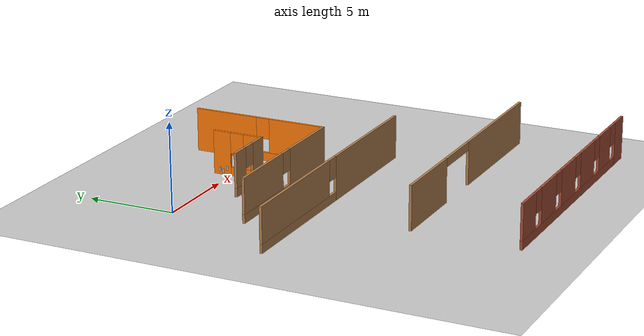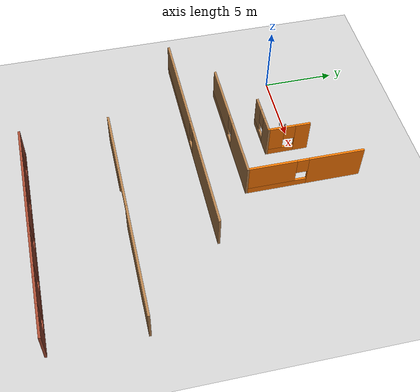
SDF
<sdf version="1.6">
 <world name="default">
  <model name="ground_plane">
   <static>1</static>
   <link name="link">
    <collision name="collision">
     <geometry><plane><normal>0 0 1</normal><size>100 100</size></plane></geometry>
     <surface><friction><ode><mu>100</mu><mu2>50</mu2></ode></friction></surface>
    </collision>
    <visual name="visual">
     <cast_shadows>0</cast_shadows>
     <geometry><plane><normal>0 0 1</normal><size>100 100</size></plane></geometry>
     <material>
      <script><uri>file://media/materials/scripts/gazebo.material</uri><name>Gazebo/Grey</name></script>
     </material>
    </visual>
   </link>
  </model>
  <model name="spiral_office">
   <link name="Wall_102">
    <pose>10.7001 -12.2894 0 0 -0 3.14159</pose>
    <visual name="Wall_102_Visual_0">
     <pose>-3.79286 0 1.25 0 -0 0</pose>
     <geometry><box><size>7.82905 0.15 2.5</size></box></geometry>
     <material>
      <script><uri>file://media/materials/scripts/gazebo.material</uri><name>Gazebo/Wood</name></script>
      <ambient>1 1 1 1</ambient>
     </material>
     <meta><layer>0</layer></meta>
    </visual>
    <collision name="Wall_102_Collision_0">
     <geometry><box><size>7.82905 0.15 2.5</size></box></geometry>
     <pose>-3.79286 0 1.25 0 -0 0</pose>
    </collision>
    <visual name="Wall_102_Visual_1">
     <pose>5.41453 0 1.25 0 -0 0</pose>
     <geometry><box><size>4.58572 0.15 2.5</size></box></geometry>
     <material>
      <script><uri>file://media/materials/scripts/gazebo.material</uri><name>Gazebo/Wood</name></script>
      <ambient>1 1 1 1</ambient>
     </material>
     <meta><layer>0</layer></meta>
    </visual>
    <collision name="Wall_102_Collision_1">
     <geometry><box><size>4.58572 0.15 2.5</size></box></geometry>
     <pose>5.41453 0 1.25 0 -0 0</pose>
    </collision>
    <visual name="Wall_102_Visual_2">
     <pose>1.62166 0 2.25 0 -0 0</pose>
     <geometry><box><size>3 0.15 0.5</size></box></geometry>
     <material>
      <script><uri>file://media/materials/scripts/gazebo.material</uri><name>Gazebo/Wood</name></script>
      <ambient>1 1 1 1</ambient>
     </material>
     <meta><layer>0</layer></meta>
    </visual>
    <collision name="Wall_102_Collision_2">
     <geometry><box><size>3 0.15 0.5</size></box></geometry>
     <pose>1.62166 0 2.25 0 -0 0</pose>
    </collision>
   </link>
   <link name="Wall_20">
    <pose>10.7162 -18.3734 0 0 -0 3.13806</pose>
    <visual name="Wall_20_Visual_0">
     <pose>-7.04407 0 1.25 0 -0 0</pose>
     <geometry><box><size>1.35851 0.15 2.5</size></box></geometry>
     <material>
      <script><uri>file://media/materials/scripts/gazebo.material</uri><name>Gazebo/Bricks</name></script>
      <ambient>1 1 1 1</ambient>
     </material>
     <meta><layer>0</layer></meta>
    </visual>
    <collision name="Wall_20_Collision_0">
     <geometry><box><size>1.35851 0.15 2.5</size></box></geometry>
     <pose>-7.04407 0 1.25 0 -0 0</pose>
    </collision>
    <visual name="Wall_20_Visual_1">
     <pose>0.679257 0 0.25 0 -0 0</pose>
     <geometry><box><size>14.0881 0.15 0.5</size></box></geometry>
     <material>
      <script><uri>file://media/materials/scripts/gazebo.material</uri><name>Gazebo/Bricks</name></script>
      <ambient>1 1 1 1</ambient>
     </material>
     <meta><layer>0</layer></meta>
    </visual>
    <collision name="Wall_20_Collision_1">
     <geometry><box><size>14.0881 0.15 0.5</size></box></geometry>
     <pose>0.679257 0 0.25 0 -0 0</pose>
    </collision>
    <visual name="Wall_20_Visual_2">
     <pose>-4.65396 0 1.5 0 -0 0</pose>
     <geometry><box><size>1.8217 0.15 2</size></box></geometry>
     <material>
      <script><uri>file://media/materials/scripts/gazebo.material</uri><name>Gazebo/Bricks</name></script>
      <ambient>1 1 1 1</ambient>
     </material>
     <meta><layer>0</layer></meta>
    </visual>
    <collision name="Wall_20_Collision_2">
     <geometry><box><size>1.8217 0.15 2</size></box></geometry>
     <pose>-4.65396 0 1.5 0 -0 0</pose>
    </collision>
    <visual name="Wall_20_Visual_3">
     <pose>-1.84491 0 1.5 0 -0 0</pose>
     <geometry><box><size>2.19639 0.15 2</size></box></geometry>
     <material>
      <script><uri>file://media/materials/scripts/gazebo.material</uri><name>Gazebo/Bricks</name></script>
      <ambient>1 1 1 1</ambient>
     </material>
     <meta><layer>0</layer></meta>
    </visual>
    <collision name="Wall_20_Collision_3">
     <geometry><box><size>2.19639 0.15 2</size></box></geometry>
     <pose>-1.84491 0 1.5 0 -0 0</pose>
    </collision>
    <visual name="Wall_20_Visual_4">
     <pose>1.12473 0 1.5 0 -0 0</pose>
     <geometry><box><size>2.14289 0.15 2</size></box></geometry>
     <material>
      <script><uri>file://media/materials/scripts/gazebo.material</uri><name>Gazebo/Bricks</name></script>
      <ambient>1 1 1 1</ambient>
     </material>
     <meta><layer>0</layer></meta>
    </visual>
    <collision name="Wall_20_Collision_4">
     <geometry><box><size>2.14289 0.15 2</size></box></geometry>
     <pose>1.12473 0 1.5 0 -0 0</pose>
    </collision>
    <visual name="Wall_20_Visual_5">
     <pose>4.06762 0 1.5 0 -0 0</pose>
     <geometry><box><size>2.14289 0.15 2</size></box></geometry>
     <material>
      <script><uri>file://media/materials/scripts/gazebo.material</uri><name>Gazebo/Bricks</name></script>
      <ambient>1 1 1 1</ambient>
     </material>
     <meta><layer>0</layer></meta>
    </visual>
    <collision name="Wall_20_Collision_5">
     <geometry><box><size>2.14289 0.15 2</size></box></geometry>
     <pose>4.06762 0 1.5 0 -0 0</pose>
    </collision>
    <visual name="Wall_20_Visual_6">
     <pose>6.8312 0 1.5 0 -0 0</pose>
     <geometry><box><size>1.78426 0.15 2</size></box></geometry>
     <material>
      <script><uri>file://media/materials/scripts/gazebo.material</uri><name>Gazebo/Bricks</name></script>
      <ambient>1 1 1 1</ambient>
     </material>
     <meta><layer>0</layer></meta>
    </visual>
    <collision name="Wall_20_Collision_6">
     <geometry><box><size>1.78426 0.15 2</size></box></geometry>
     <pose>6.8312 0 1.5 0 -0 0</pose>
    </collision>
    <visual name="Wall_20_Visual_7">
     <pose>-5.96481 0 1.9 0 -0 0</pose>
     <geometry><box><size>0.8 0.15 1.2</size></box></geometry>
     <material>
      <script><uri>file://media/materials/scripts/gazebo.material</uri><name>Gazebo/Bricks</name></script>
      <ambient>1 1 1 1</ambient>
     </material>
     <meta><layer>0</layer></meta>
    </visual>
    <collision name="Wall_20_Collision_7">
     <geometry><box><size>0.8 0.15 1.2</size></box></geometry>
     <pose>-5.96481 0 1.9 0 -0 0</pose>
    </collision>
    <visual name="Wall_20_Visual_8">
     <pose>-3.34311 0 1.9 0 -0 0</pose>
     <geometry><box><size>0.8 0.15 1.2</size></box></geometry>
     <material>
      <script><uri>file://media/materials/scripts/gazebo.material</uri><name>Gazebo/Bricks</name></script>
      <ambient>1 1 1 1</ambient>
     </material>
     <meta><layer>0</layer></meta>
    </visual>
    <collision name="Wall_20_Collision_8">
     <geometry><box><size>0.8 0.15 1.2</size></box></geometry>
     <pose>-3.34311 0 1.9 0 -0 0</pose>
    </collision>
    <visual name="Wall_20_Visual_9">
     <pose>-0.346715 0 1.9 0 -0 0</pose>
     <geometry><box><size>0.8 0.15 1.2</size></box></geometry>
     <material>
      <script><uri>file://media/materials/scripts/gazebo.material</uri><name>Gazebo/Bricks</name></script>
      <ambient>1 1 1 1</ambient>
     </material>
     <meta><layer>0</layer></meta>
    </visual>
    <collision name="Wall_20_Collision_9">
     <geometry><box><size>0.8 0.15 1.2</size></box></geometry>
     <pose>-0.346715 0 1.9 0 -0 0</pose>
    </collision>
    <visual name="Wall_20_Visual_10">
     <pose>2.59618 0 1.9 0 -0 0</pose>
     <geometry><box><size>0.8 0.15 1.2</size></box></geometry>
     <material>
      <script><uri>file://media/materials/scripts/gazebo.material</uri><name>Gazebo/Bricks</name></script>
      <ambient>1 1 1 1</ambient>
     </material>
     <meta><layer>0</layer></meta>
    </visual>
    <collision name="Wall_20_Collision_10">
     <geometry><box><size>0.8 0.15 1.2</size></box></geometry>
     <pose>2.59618 0 1.9 0 -0 0</pose>
    </collision>
    <visual name="Wall_20_Visual_11">
     <pose>5.53907 0 1.9 0 -0 0</pose>
     <geometry><box><size>0.8 0.15 1.2</size></box></geometry>
     <material>
      <script><uri>file://media/materials/scripts/gazebo.material</uri><name>Gazebo/Bricks</name></script>
      <ambient>1 1 1 1</ambient>
     </material>
     <meta><layer>0</layer></meta>
    </visual>
    <collision name="Wall_20_Collision_11">
     <geometry><box><size>0.8 0.15 1.2</size></box></geometry>
     <pose>5.53907 0 1.9 0 -0 0</pose>
    </collision>
   </link>
   <link name="Wall_41">
    <pose>5.02084 -6.86111 0 0 -0 3.14159</pose>
    <visual name="Wall_41_Visual_0">
     <pose>-4.17643 0 1.25 0 -0 0</pose>
     <geometry><box><size>7.64715 0.15 2.5</size></box></geometry>
     <material>
      <script><uri>file://media/materials/scripts/gazebo.material</uri><name>Gazebo/Wood</name></script>
      <ambient>1 1 1 1</ambient>
     </material>
     <meta><layer>0</layer></meta>
    </visual>
    <collision name="Wall_41_Collision_0">
     <geometry><box><size>7.64715 0.15 2.5</size></box></geometry>
     <pose>-4.17643 0 1.25 0 -0 0</pose>
    </collision>
    <visual name="Wall_41_Visual_1">
     <pose>3.82357 0 0.25 0 -0 0</pose>
     <geometry><box><size>8.35285 0.15 0.5</size></box></geometry>
     <material>
      <script><uri>file://media/materials/scripts/gazebo.material</uri><name>Gazebo/Wood</name></script>
      <ambient>1 1 1 1</ambient>
     </material>
     <meta><layer>0</layer></meta>
    </visual>
    <collision name="Wall_41_Collision_1">
     <geometry><box><size>8.35285 0.15 0.5</size></box></geometry>
     <pose>3.82357 0 0.25 0 -0 0</pose>
    </collision>
    <visual name="Wall_41_Visual_2">
     <pose>4.22357 0 1.5 0 -0 0</pose>
     <geometry><box><size>7.55285 0.15 2</size></box></geometry>
     <material>
      <script><uri>file://media/materials/scripts/gazebo.material</uri><name>Gazebo/Wood</name></script>
      <ambient>1 1 1 1</ambient>
     </material>
     <meta><layer>0</layer></meta>
    </visual>
    <collision name="Wall_41_Collision_2">
     <geometry><box><size>7.55285 0.15 2</size></box></geometry>
     <pose>4.22357 0 1.5 0 -0 0</pose>
    </collision>
    <visual name="Wall_41_Visual_3">
     <pose>0.047146 0 1.9 0 -0 0</pose>
     <geometry><box><size>0.8 0.15 1.2</size></box></geometry>
     <material>
      <script><uri>file://media/materials/scripts/gazebo.material</uri><name>Gazebo/Wood</name></script>
      <ambient>1 1 1 1</ambient>
     </material>
     <meta><layer>0</layer></meta>
    </visual>
    <collision name="Wall_41_Collision_3">
     <geometry><box><size>0.8 0.15 1.2</size></box></geometry>
     <pose>0.047146 0 1.9 0 -0 0</pose>
    </collision>
   </link>
   <link name="Wall_44">
    <pose>9.44584 -0.186107 0 0 0 -1.5708</pose>
    <visual name="Wall_44_Visual_0">
     <pose>-2.09937 0 1.25 0 -0 0</pose>
     <geometry><box><size>3.80127 0.15 2.5</size></box></geometry>
     <material>
      <script><uri>file://media/materials/scripts/gazebo.material</uri><name>Gazebo/Grey</name></script>
      <ambient>0.996078 0.47451 0.0196078 1</ambient>
     </material>
     <meta><layer>0</layer></meta>
    </visual>
    <collision name="Wall_44_Collision_0">
     <geometry><box><size>3.80127 0.15 2.5</size></box></geometry>
     <pose>-2.09937 0 1.25 0 -0 0</pose>
    </collision>
    <visual name="Wall_44_Visual_1">
     <pose>1.90063 0 0.25 0 -0 0</pose>
     <geometry><box><size>4.19873 0.15 0.5</size></box></geometry>
     <material>
      <script><uri>file://media/materials/scripts/gazebo.material</uri><name>Gazebo/Grey</name></script>
      <ambient>0.996078 0.47451 0.0196078 1</ambient>
     </material>
     <meta><layer>0</layer></meta>
    </visual>
    <collision name="Wall_44_Collision_1">
     <geometry><box><size>4.19873 0.15 0.5</size></box></geometry>
     <pose>1.90063 0 0.25 0 -0 0</pose>
    </collision>
    <visual name="Wall_44_Visual_2">
     <pose>2.30063 0 1.5 0 -0 0</pose>
     <geometry><box><size>3.39873 0.15 2</size></box></geometry>
     <material>
      <script><uri>file://media/materials/scripts/gazebo.material</uri><name>Gazebo/Grey</name></script>
      <ambient>0.996078 0.47451 0.0196078 1</ambient>
     </material>
     <meta><layer>0</layer></meta>
    </visual>
    <collision name="Wall_44_Collision_2">
     <geometry><box><size>3.39873 0.15 2</size></box></geometry>
     <pose>2.30063 0 1.5 0 -0 0</pose>
    </collision>
    <visual name="Wall_44_Visual_3">
     <pose>0.201267 0 1.9 0 -0 0</pose>
     <geometry><box><size>0.8 0.15 1.2</size></box></geometry>
     <material>
      <script><uri>file://media/materials/scripts/gazebo.material</uri><name>Gazebo/Grey</name></script>
      <ambient>0.996078 0.47451 0.0196078 1</ambient>
     </material>
     <meta><layer>0</layer></meta>
    </visual>
    <collision name="Wall_44_Collision_3">
     <geometry><box><size>0.8 0.15 1.2</size></box></geometry>
     <pose>0.201267 0 1.9 0 -0 0</pose>
    </collision>
   </link>
   <link name="Wall_45">
    <pose>4.89584 -4.11111 0 0 -0 3.14159</pose>
    <visual name="Wall_45_Visual_0">
     <pose>-2.55143 0 1.25 0 -0 0</pose>
     <geometry><box><size>4.14715 0.15 2.5</size></box></geometry>
     <material>
      <script><uri>file://media/materials/scripts/gazebo.material</uri><name>Gazebo/Wood</name></script>
      <ambient>1 1 1 1</ambient>
     </material>
     <meta><layer>0</layer></meta>
    </visual>
    <collision name="Wall_45_Collision_0">
     <geometry><box><size>4.14715 0.15 2.5</size></box></geometry>
     <pose>-2.55143 0 1.25 0 -0 0</pose>
    </collision>
    <visual name="Wall_45_Visual_1">
     <pose>2.07357 0 0.25 0 -0 0</pose>
     <geometry><box><size>5.10285 0.15 0.5</size></box></geometry>
     <material>
      <script><uri>file://media/materials/scripts/gazebo.material</uri><name>Gazebo/Wood</name></script>
      <ambient>1 1 1 1</ambient>
     </material>
     <meta><layer>0</layer></meta>
    </visual>
    <collision name="Wall_45_Collision_1">
     <geometry><box><size>5.10285 0.15 0.5</size></box></geometry>
     <pose>2.07357 0 0.25 0 -0 0</pose>
    </collision>
    <visual name="Wall_45_Visual_2">
     <pose>2.47357 0 1.5 0 -0 0</pose>
     <geometry><box><size>4.30285 0.15 2</size></box></geometry>
     <material>
      <script><uri>file://media/materials/scripts/gazebo.material</uri><name>Gazebo/Wood</name></script>
      <ambient>1 1 1 1</ambient>
     </material>
     <meta><layer>0</layer></meta>
    </visual>
    <collision name="Wall_45_Collision_2">
     <geometry><box><size>4.30285 0.15 2</size></box></geometry>
     <pose>2.47357 0 1.5 0 -0 0</pose>
    </collision>
    <visual name="Wall_45_Visual_3">
     <pose>-0.077854 0 1.9 0 -0 0</pose>
     <geometry><box><size>0.8 0.15 1.2</size></box></geometry>
     <material>
      <script><uri>file://media/materials/scripts/gazebo.material</uri><name>Gazebo/Wood</name></script>
      <ambient>1 1 1 1</ambient>
     </material>
     <meta><layer>0</layer></meta>
    </visual>
    <collision name="Wall_45_Collision_3">
     <geometry><box><size>0.8 0.15 1.2</size></box></geometry>
     <pose>-0.077854 0 1.9 0 -0 0</pose>
    </collision>
   </link>
   <link name="Wall_48">
    <pose>6.44584 -0.436107 0 0 0 -1.5708</pose>
    <visual name="Wall_48_Visual_0">
     <pose>-0.974203 0 1.25 0 -0 0</pose>
     <geometry><box><size>1.05159 0.15 2.5</size></box></geometry>
     <material>
      <script><uri>file://media/materials/scripts/gazebo.material</uri><name>Gazebo/Grey</name></script>
      <ambient>0.996078 0.47451 0.0196078 1</ambient>
     </material>
     <meta><layer>0</layer></meta>
    </visual>
    <collision name="Wall_48_Collision_0">
     <geometry><box><size>1.05159 0.15 2.5</size></box></geometry>
     <pose>-0.974203 0 1.25 0 -0 0</pose>
    </collision>
    <visual name="Wall_48_Visual_1">
     <pose>0.525797 0 0.25 0 -0 0</pose>
     <geometry><box><size>1.94841 0.15 0.5</size></box></geometry>
     <material>
      <script><uri>file://media/materials/scripts/gazebo.material</uri><name>Gazebo/Grey</name></script>
      <ambient>0.996078 0.47451 0.0196078 1</ambient>
     </material>
     <meta><layer>0</layer></meta>
    </visual>
    <collision name="Wall_48_Collision_1">
     <geometry><box><size>1.94841 0.15 0.5</size></box></geometry>
     <pose>0.525797 0 0.25 0 -0 0</pose>
    </collision>
    <visual name="Wall_48_Visual_2">
     <pose>0.925797 0 1.5 0 -0 0</pose>
     <geometry><box><size>1.14841 0.15 2</size></box></geometry>
     <material>
      <script><uri>file://media/materials/scripts/gazebo.material</uri><name>Gazebo/Grey</name></script>
      <ambient>0.996078 0.47451 0.0196078 1</ambient>
     </material>
     <meta><layer>0</layer></meta>
    </visual>
    <collision name="Wall_48_Collision_2">
     <geometry><box><size>1.14841 0.15 2</size></box></geometry>
     <pose>0.925797 0 1.5 0 -0 0</pose>
    </collision>
    <visual name="Wall_48_Visual_3">
     <pose>-0.048406 0 1.9 0 -0 0</pose>
     <geometry><box><size>0.8 0.15 1.2</size></box></geometry>
     <material>
      <script><uri>file://media/materials/scripts/gazebo.material</uri><name>Gazebo/Grey</name></script>
      <ambient>0.996078 0.47451 0.0196078 1</ambient>
     </material>
     <meta><layer>0</layer></meta>
    </visual>
    <collision name="Wall_48_Collision_3">
     <geometry><box><size>0.8 0.15 1.2</size></box></geometry>
     <pose>-0.048406 0 1.9 0 -0 0</pose>
    </collision>
   </link>
   <link name="Wall_49">
    <pose>5.02084 -1.86111 0 0 -0 3.14159</pose>
    <visual name="Wall_49_Visual_0">
     <pose>-0.924443 0 1.25 0 -0 0</pose>
     <geometry><box><size>1.15111 0.15 2.5</size></box></geometry>
     <material>
      <script><uri>file://media/materials/scripts/gazebo.material</uri><name>Gazebo/Wood</name></script>
      <ambient>1 1 1 1</ambient>
     </material>
     <meta><layer>0</layer></meta>
    </visual>
    <collision name="Wall_49_Collision_0">
     <geometry><box><size>1.15111 0.15 2.5</size></box></geometry>
     <pose>-0.924443 0 1.25 0 -0 0</pose>
    </collision>
    <visual name="Wall_49_Visual_1">
     <pose>0.575557 0 0.25 0 -0 0</pose>
     <geometry><box><size>1.84889 0.15 0.5</size></box></geometry>
     <material>
      <script><uri>file://media/materials/scripts/gazebo.material</uri><name>Gazebo/Wood</name></script>
      <ambient>1 1 1 1</ambient>
     </material>
     <meta><layer>0</layer></meta>
    </visual>
    <collision name="Wall_49_Collision_1">
     <geometry><box><size>1.84889 0.15 0.5</size></box></geometry>
     <pose>0.575557 0 0.25 0 -0 0</pose>
    </collision>
    <visual name="Wall_49_Visual_2">
     <pose>0.975557 0 1.5 0 -0 0</pose>
     <geometry><box><size>1.04889 0.15 2</size></box></geometry>
     <material>
      <script><uri>file://media/materials/scripts/gazebo.material</uri><name>Gazebo/Wood</name></script>
      <ambient>1 1 1 1</ambient>
     </material>
     <meta><layer>0</layer></meta>
    </visual>
    <collision name="Wall_49_Collision_2">
     <geometry><box><size>1.04889 0.15 2</size></box></geometry>
     <pose>0.975557 0 1.5 0 -0 0</pose>
    </collision>
    <visual name="Wall_49_Visual_3">
     <pose>0.051113 0 1.9 0 -0 0</pose>
     <geometry><box><size>0.8 0.15 1.2</size></box></geometry>
     <material>
      <script><uri>file://media/materials/scripts/gazebo.material</uri><name>Gazebo/Wood</name></script>
      <ambient>1 1 1 1</ambient>
     </material>
     <meta><layer>0</layer></meta>
    </visual>
    <collision name="Wall_49_Collision_3">
     <geometry><box><size>0.8 0.15 1.2</size></box></geometry>
     <pose>0.051113 0 1.9 0 -0 0</pose>
    </collision>
   </link>
   <static>1</static>
  </model>
  <model name="beer">
   <link name="link">
    <pose>0 0 0.115 0 -0 0</pose>
    <inertial>
     <mass>0.39</mass>
     <inertia><ixx>0.00058</ixx><ixy>0</ixy><ixz>0</ixz><iyy>0.00058</iyy><iyz>0</iyz><izz>0.00019</izz></inertia>
    </inertial>
    <collision name="collision">
     <geometry><cylinder><radius>0.055</radius><length>0.23</length></cylinder></geometry>
    </collision>
    <visual name="visual">
     <geometry><cylinder><radius>0.055</radius><length>0.23</length></cylinder></geometry>
     <material>
      <script>
       <uri>model://beer/materials/scripts</uri>
       <uri>model://beer/materials/textures</uri>
       <name>Beer/Diffuse</name>
      </script>
     </material>
    </visual>
   </link>
   <pose>4.93815 -0.108864 0.775 8e-06 1e-06 0.005363</pose>
  </model>
  <model name="beer_clone">
   <link name="link">
    <pose>0 0 0.115 0 -0 0</pose>
    <inertial>
     <mass>0.39</mass>
     <inertia><ixx>0.00058</ixx><ixy>0</ixy><ixz>0</ixz><iyy>0.00058</iyy><iyz>0</iyz><izz>0.00019</izz></inertia>
    </inertial>
    <collision name="collision">
     <geometry><cylinder><radius>0.055</radius><length>0.23</length></cylinder></geometry>
    </collision>
    <visual name="visual">
     <geometry><cylinder><radius>0.055</radius><length>0.23</length></cylinder></geometry>
     <material>
      <script>
       <uri>model://beer/materials/scripts</uri>
       <uri>model://beer/materials/textures</uri>
       <name>Beer/Diffuse</name>
      </script>
     </material>
    </visual>
   </link>
   <pose>5.18777 -0.424927 0.774991 4e-06 1.7e-05 2.80923</pose>
  </model>
  <model name="beer_clone_0">
   <link name="link">
    <pose>0 0 0.115 0 -0 0</pose>
    <inertial>
     <mass>0.39</mass>
     <inertia><ixx>0.00058</ixx><ixy>0</ixy><ixz>0</ixz><iyy>0.00058</iyy><iyz>0</iyz><izz>0.00019</izz></inertia>
    </inertial>
    <collision name="collision">
     <geometry><cylinder><radius>0.055</radius><length>0.23</length></cylinder></geometry>
    </collision>
    <visual name="visual">
     <geometry><cylinder><radius>0.055</radius><length>0.23</length></cylinder></geometry>
     <material>
      <script>
       <uri>model://beer/materials/scripts</uri>
       <uri>model://beer/materials/textures</uri>
       <name>Beer/Diffuse</name>
      </script>
     </material>
    </visual>
   </link>
   <pose>4.73405 -0.433279 0.774994 6.1e-05 0 -1.70503</pose>
  </model>
 </world>
</sdf>
